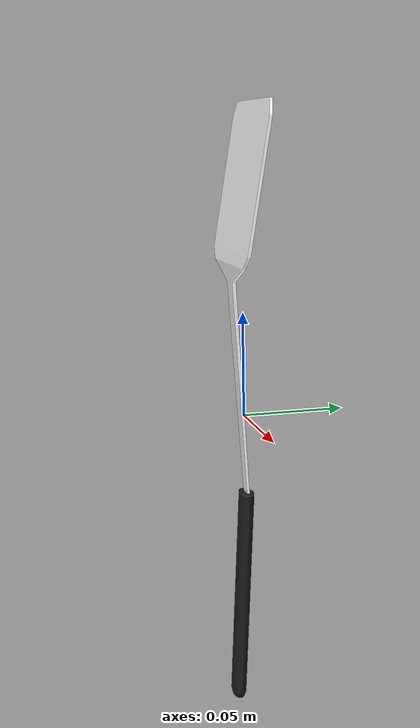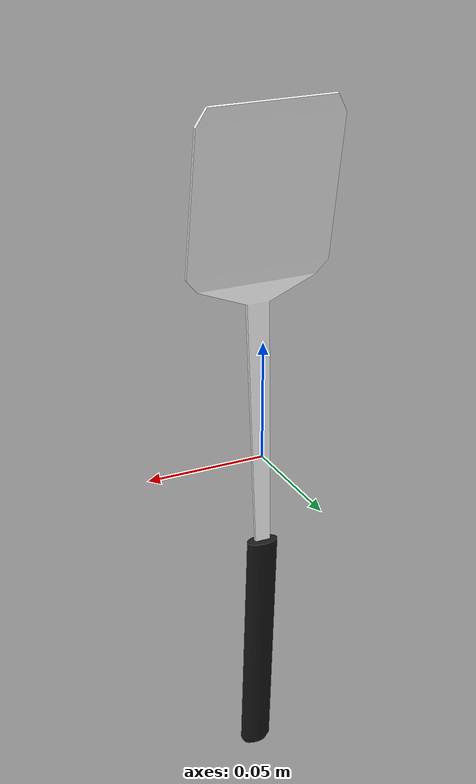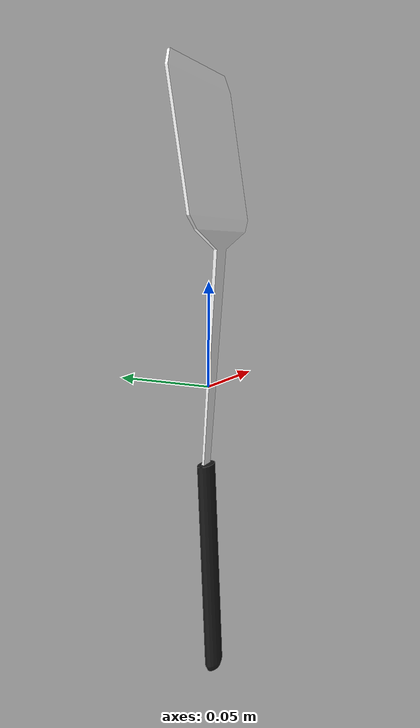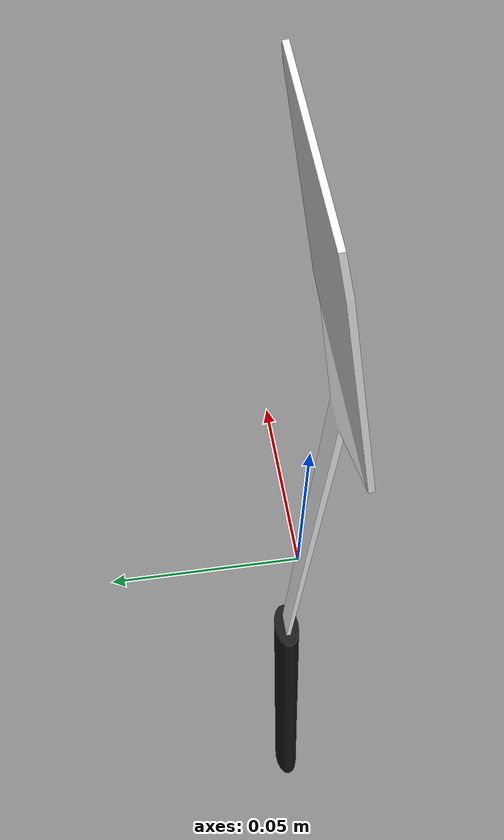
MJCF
<mujoco model="Spatula_1">
  <default>
    <default class="visual">
      <geom group="2" type="mesh" contype="0" conaffinity="0"/>
    </default>
    <default class="collision">
      <geom group="3" type="mesh"/>
    </default>
  </default>
  <asset>
    <material name="Material.003" specular="0.5" shininess="0.5" rgba="0.09850502 0.09850502 0.09850502 1.0"/>
    <material name="HammeredMetal_AlbedoTransparency" specular="0.5" shininess="0.5" rgba="1 1 1 1.0"/>
    <mesh file="Spatula_1_0.obj"/>
    <mesh file="Spatula_1_1.obj"/>
    <mesh file="Spatula_1_collision_0.obj"/>
    <mesh file="Spatula_1_collision_1.obj"/>
  </asset>
  <worldbody>
    <body name="Spatula_1">
      <geom mesh="Spatula_1_0" material="HammeredMetal_AlbedoTransparency" class="visual"/>
      <geom mesh="Spatula_1_1" material="Material.003" class="visual"/>
      <geom mesh="Spatula_1_collision_0" rgba="0.6710190164898909 0.9472423064845014 0.9319461181500446 1" class="collision"/>
      <geom mesh="Spatula_1_collision_1" rgba="0.5887995059040021 0.7267000340615423 0.7481537525182357 1" class="collision"/>
    </body>
  </worldbody>
</mujoco>
